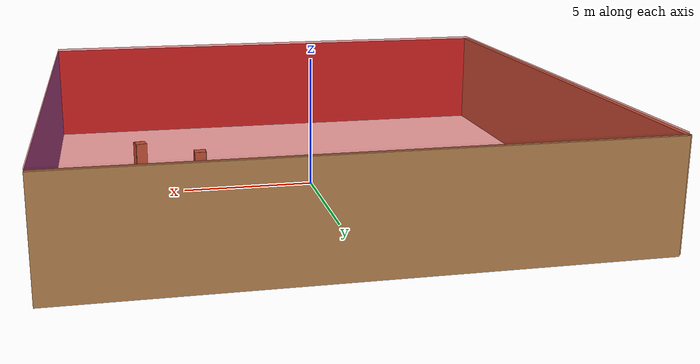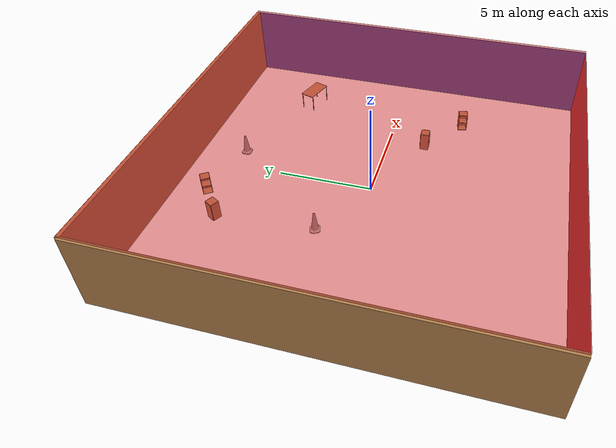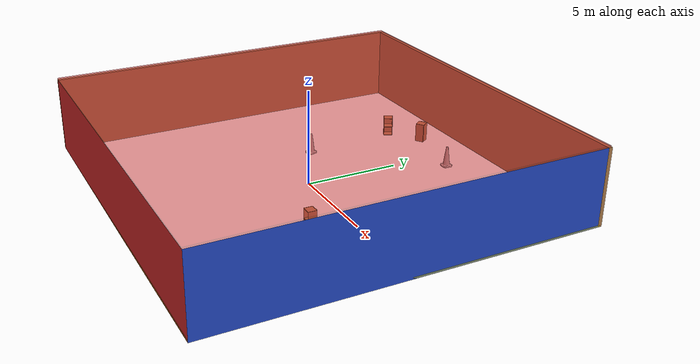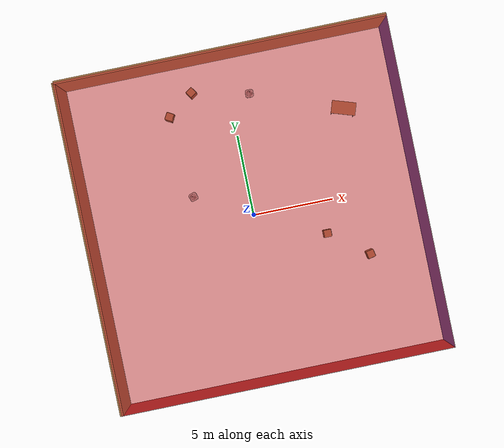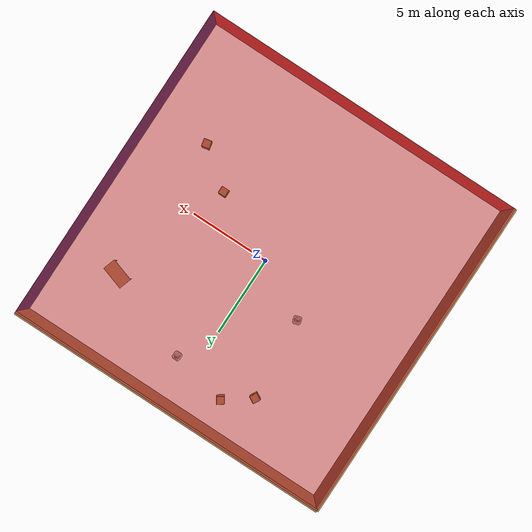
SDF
<sdf version="1.4">
 <world name="default">
  <physics type="ode">
   <max_step_size>0.001</max_step_size>
   <real_time_factor>1</real_time_factor>
   <real_time_update_rate>1000</real_time_update_rate>
   <gravity>0 0 -9.8</gravity>
  </physics>
  <scene><ambient>0.4 0.4 0.4 1</ambient><background>0.7 0.7 0.7 1</background><shadows>1</shadows></scene>
  <model name="Surrounding">
   <static>1</static>
   <link name="Ceiling">
    <collision name="Ceiling_Collision"><geometry><box><size>20 20 0.1</size></box></geometry></collision>
    <visual name="Ceiling_Visual">
     <geometry><box><size>20 20 0.1</size></box></geometry>
     <material>
      <script><uri>file://media/materials/scripts/gazebo.material</uri><name>Gazebo/RedTransparent</name></script>
     </material>
    </visual>
    <pose>0 0 4.05 0 0 0</pose>
   </link>
   <link name="Wall_South">
    <collision name="Wall_South_Collision">
     <geometry><box><size>20 0 4</size></box></geometry>
     <pose>0 0 2 0 -0 0</pose>
    </collision>
    <visual name="Wall_South_Visual">
     <pose>0 0 2 0 -0 0</pose>
     <geometry><box><size>20 0 4</size></box></geometry>
     <material>
      <script><uri>file://media/materials/scripts/gazebo.material</uri><name>Gazebo/RedBright</name></script>
     </material>
    </visual>
    <velocity_decay><linear>0</linear><angular>0</angular></velocity_decay>
    <pose>0 -10 0 0 -0 0</pose>
   </link>
   <link name="Wall_East">
    <collision name="Wall_21_Collision">
     <geometry><box><size>20 0 4</size></box></geometry>
     <pose>0 0 2 0 -0 0</pose>
    </collision>
    <visual name="Wall_21_Visual">
     <pose>0 0 2 0 -0 0</pose>
     <geometry><box><size>20 0 4</size></box></geometry>
     <material>
      <script><uri>file://media/materials/scripts/gazebo.material</uri><name>Gazebo/BlueLaser</name></script>
     </material>
    </visual>
    <velocity_decay><linear>0</linear><angular>0</angular></velocity_decay>
    <pose>10 0 0 0 -0 1.5708</pose>
   </link>
   <link name="Wall_North">
    <collision name="Wall_22_Collision">
     <geometry><box><size>20 0.2 4</size></box></geometry>
     <pose>0 0 2 0 -0 0</pose>
    </collision>
    <visual name="Wall_22_Visual">
     <pose>0 0 2 0 -0 0</pose>
     <geometry><box><size>20 0.2 4</size></box></geometry>
     <material>
      <script><uri>file://media/materials/scripts/gazebo.material</uri><name>Gazebo/WoodFloor</name></script>
     </material>
    </visual>
    <velocity_decay><linear>0</linear><angular>0</angular></velocity_decay>
    <pose>0 10 0 0 -0 0</pose>
   </link>
   <link name="Wall_West">
    <collision name="Wall_23_Collision">
     <geometry><box><size>20 0.2 4</size></box></geometry>
     <pose>0 0 2 0 -0 0</pose>
    </collision>
    <visual name="Wall_23_Visual">
     <pose>0 0 2 0 -0 0</pose>
     <geometry><box><size>20 0.2 4</size></box></geometry>
     <material>
      <script><uri>file://media/materials/scripts/gazebo.material</uri><name>Gazebo/Wood</name></script>
     </material>
    </visual>
    <velocity_decay><linear>0</linear><angular>0</angular></velocity_decay>
    <pose>-10 0 0 0 0 -1.5708</pose>
   </link>
   <link name="Ground_link">
    <collision name="collision">
     <pose>0 0 .05 0 -0 0</pose>
     <geometry><box><size>20 20 0.1</size></box></geometry>
    </collision>
    <visual name="visual">
     <pose>0 0 .05 0 -0 0</pose>
     <geometry><box><size>20 20 0.1</size></box></geometry>
     <material>
      <script>
       <uri>file://media/materials/scripts/gazebo.material</uri>
       <name>Gazebo/YellowTransparent</name>
      </script>
     </material>
    </visual>
   </link>
   <static>1</static>
  </model>
  <spherical_coordinates>
   <surface_model>EARTH_WGS84</surface_model>
   <latitude_deg>0</latitude_deg>
   <longitude_deg>0</longitude_deg>
   <elevation>0</elevation>
   <heading_deg>0</heading_deg>
  </spherical_coordinates>
  <light name="lightball_0" type="diffuse">
   <diffuse>0.8 0.8 0.8 1</diffuse>
   <specular>0.2 0.2 0.2 1</specular>
   <attenuation>
    <range>100</range>
    <constant>0.7</constant>
    <linear>0.01</linear>
    <quadratic>0.001</quadratic>
   </attenuation>
   <direction>-0.5 0.1 -0.9</direction>
   <pose>-4.77375790221 -8.62696558995 1.84966635523 0 0 0</pose>
  </light>
  <light name="lightball_1" type="diffuse">
   <diffuse>0.8 0.8 0.8 1</diffuse>
   <specular>0.2 0.2 0.2 1</specular>
   <attenuation>
    <range>100</range>
    <constant>0.7</constant>
    <linear>0.01</linear>
    <quadratic>0.001</quadratic>
   </attenuation>
   <direction>-0.5 0.1 -0.9</direction>
   <pose>0.400684169634 6.97211841291 2.75874545581 0 0 0</pose>
  </light>
  <light name="lightball_2" type="diffuse">
   <diffuse>0.8 0.8 0.8 1</diffuse>
   <specular>0.2 0.2 0.2 1</specular>
   <attenuation>
    <range>100</range>
    <constant>0.7</constant>
    <linear>0.01</linear>
    <quadratic>0.001</quadratic>
   </attenuation>
   <direction>-0.5 0.1 -0.9</direction>
   <pose>-7.94556552747 6.62298743524 0.527977233097 0 0 0</pose>
  </light>
  <light name="lightball_3" type="diffuse">
   <diffuse>0.8 0.8 0.8 1</diffuse>
   <specular>0.2 0.2 0.2 1</specular>
   <attenuation>
    <range>100</range>
    <constant>0.7</constant>
    <linear>0.01</linear>
    <quadratic>0.001</quadratic>
   </attenuation>
   <direction>-0.5 0.1 -0.9</direction>
   <pose>-2.81288529124 5.60934396051 2.86392792553 0 0 0</pose>
  </light>
  <light name="lightball_4" type="diffuse">
   <diffuse>0.8 0.8 0.8 1</diffuse>
   <specular>0.2 0.2 0.2 1</specular>
   <attenuation>
    <range>100</range>
    <constant>0.7</constant>
    <linear>0.01</linear>
    <quadratic>0.001</quadratic>
   </attenuation>
   <direction>-0.5 0.1 -0.9</direction>
   <pose>-0.70031637795 -3.54392853771 3.83354202238 0 0 0</pose>
  </light>
  <light name="lightball_5" type="diffuse">
   <diffuse>0.8 0.8 0.8 1</diffuse>
   <specular>0.2 0.2 0.2 1</specular>
   <attenuation>
    <range>100</range>
    <constant>0.7</constant>
    <linear>0.01</linear>
    <quadratic>0.001</quadratic>
   </attenuation>
   <direction>-0.5 0.1 -0.9</direction>
   <pose>-5.13829532719 -7.03123106218 0.544009790032 0 0 0</pose>
  </light>
  <light name="lightball_6" type="diffuse">
   <diffuse>0.8 0.8 0.8 1</diffuse>
   <specular>0.2 0.2 0.2 1</specular>
   <attenuation>
    <range>100</range>
    <constant>0.7</constant>
    <linear>0.01</linear>
    <quadratic>0.001</quadratic>
   </attenuation>
   <direction>-0.5 0.1 -0.9</direction>
   <pose>-2.15868133465 5.741531884 2.27771189498 0 0 0</pose>
  </light>
  <light name="lightball_7" type="diffuse">
   <diffuse>0.8 0.8 0.8 1</diffuse>
   <specular>0.2 0.2 0.2 1</specular>
   <attenuation>
    <range>100</range>
    <constant>0.7</constant>
    <linear>0.01</linear>
    <quadratic>0.001</quadratic>
   </attenuation>
   <direction>-0.5 0.1 -0.9</direction>
   <pose>6.64691781283 -8.93637189522 2.65672313537 0 0 0</pose>
  </light>
  <light name="lightball_8" type="diffuse">
   <diffuse>0.8 0.8 0.8 1</diffuse>
   <specular>0.2 0.2 0.2 1</specular>
   <attenuation>
    <range>100</range>
    <constant>0.7</constant>
    <linear>0.01</linear>
    <quadratic>0.001</quadratic>
   </attenuation>
   <direction>-0.5 0.1 -0.9</direction>
   <pose>-3.07977660639 -2.11174381001 1.90261690988 0 0 0</pose>
  </light>
  <include>
   <uri>model://construction_cone</uri>
   <pose>-3.46527989769 1.87385576419 0 0 0 1.88758598191</pose>
  </include>
  <include><uri>model://cabinet</uri><pose>-3.86742104479 6.96626315745 0 0 0 2.62655611111</pose></include>
  <include><uri>model://cabinet</uri><pose>-2.26343603411 8.15934211901 0 0 0 0.594446658628</pose></include>
  <include>
   <uri>model://construction_cone</uri>
   <pose>1.25607237646 7.48084898562 0 0 0 1.54948616054</pose>
  </include>
  <include><uri>model://cabinet</uri><pose>4.21480719925 -2.03081959221 0 0 0 1.56382857628</pose></include>
  <include><uri>model://cabinet</uri><pose>6.55857605621 -3.80214684375 0 0 0 0.207499459365</pose></include>
  <include><uri>model://table</uri><pose>6.73346128144 5.33168146938 0 0 0 2.83089543801</pose></include>
 </world>
</sdf>

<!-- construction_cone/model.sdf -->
<sdf version="1.5">
  <model name="Construction Cone">
    <link name="link">
      <collision name="collision">
        <geometry>
          <mesh>
            <scale>10 10 10</scale>
            <uri>file://isr-testbed/construction_cone/meshes/construction_cone.dae</uri>
          </mesh>
        </geometry>
      </collision>
      <visual name="visual">
        <geometry>
          <mesh>
            <scale>10 10 10</scale>
            <uri>file://isr-testbed/construction_cone/meshes/construction_cone.dae</uri>
          </mesh>
        </geometry>
      </visual>
    </link>
  </model>
</sdf>

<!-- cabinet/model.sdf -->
<sdf version="1.5">
  <model name="cabinet">
    <static>true</static>
    <link name="cabinet_bottom_plate">
      <inertial>
        <pose>0 0 -1 0 0 0</pose>
        <inertia>
          <ixx>2.050000</ixx>
          <ixy>0</ixy>
          <ixz>0</ixz>
          <iyy>2.050000</iyy>
          <iyz>0</iyz>
          <izz>2.050000</izz>
        </inertia>
        <mass>25.000000</mass>
      </inertial>
      <collision name="cabinet_bottom_plate_geom">
        <pose>0 0 0.010000 0 0 0</pose>
        <geometry>
          <box>
            <size>0.450000 0.450000 0.020000</size>
          </box>
        </geometry>
      </collision>
      <visual name="cabinet_bottom_plate_geom_visual">
        <pose>0 0 0.010000 0 0 0</pose>
        <geometry>
          <box>
            <size>0.450000 0.450000 0.020000</size>
          </box>
        </geometry>
        <material>
          <script>
            <uri>model://media/materials/scripts/gazebo.material</uri>
            <name>Gazebo/Wood</name>
          </script>
        </material>
      </visual>
      <collision name="cabinet_bottom_plate_geom_cabinet_back_plate">
        <pose>0.235000 0 0.510000 0 0 0</pose>
        <geometry>
          <box>
            <size>0.020000 0.450000 1.020000</size>
          </box>
        </geometry>
      </collision>
      <visual name="cabinet_bottom_plate_geom_cabinet_back_plate_visual">
        <pose>0.235000 0 0.510000 0 0 0</pose>
        <geometry>
          <box>
            <size>0.020000 0.450000 1.020000</size>
          </box>
        </geometry>
        <material>
          <script>
            <uri>model://media/materials/scripts/gazebo.material</uri>
            <name>Gazebo/Wood</name>
          </script>
        </material>
      </visual>
      <collision name="cabinet_bottom_plate_geom_cabinet_left_plate">
        <pose>0 0.235000 0.510000 0 0 0</pose>
        <geometry>
          <box>
            <size>0.450000 0.020000 1.020000</size>
          </box>
        </geometry>
      </collision>
      <visual name="cabinet_bottom_plate_geom_cabinet_left_plate_visual">
        <pose>0 0.235000 0.510000 0 0 0</pose>
        <geometry>
          <box>
            <size>0.450000 0.020000 1.020000</size>
          </box>
        </geometry>
        <material>
          <script>
            <uri>model://media/materials/scripts/gazebo.material</uri>
            <name>Gazebo/Wood</name>
          </script>
        </material>
      </visual>
      <collision name="cabinet_bottom_plate_geom_cabinet_middle_plate">
        <pose>0 0 0.510000 0 0 0</pose>
        <geometry>
          <box>
            <size>0.450000 0.450000 0.020000</size>
          </box>
        </geometry>
      </collision>
      <visual name="cabinet_bottom_plate_geom_cabinet_middle_plate_visual">
        <pose>0 0 0.510000 0 0 0</pose>
        <geometry>
          <box>
            <size>0.450000 0.450000 0.020000</size>
          </box>
        </geometry>
        <material>
          <script>
            <uri>model://media/materials/scripts/gazebo.material</uri>
            <name>Gazebo/Wood</name>
          </script>
        </material>
      </visual>
      <collision name="cabinet_bottom_plate_geom_cabinet_right_plate">
        <pose>0 -0.235000 0.510000 0 0 0</pose>
        <geometry>
          <box>
            <size>0.450000 0.020000 1.020000</size>
          </box>
        </geometry>
      </collision>
      <visual name="cabinet_bottom_plate_geom_cabinet_right_plate_visual">
        <pose>0 -0.235000 0.510000 0 0 0</pose>
        <geometry>
          <box>
            <size>0.450000 0.020000 1.020000</size>
          </box>
        </geometry>
        <material>
          <script>
            <uri>model://media/materials/scripts/gazebo.material</uri>
            <name>Gazebo/Wood</name>
          </script>
        </material>
      </visual>
      <collision name="cabinet_bottom_plate_geom_cabinet_top_plate">
        <pose>0 0 1.010000 0 0 0</pose>
        <geometry>
          <box>
            <size>0.450000 0.450000 0.020000</size>
          </box>
        </geometry>
      </collision>
      <visual name="cabinet_bottom_plate_geom_cabinet_top_plate_visual">
        <pose>0 0 1.010000 0 0 0</pose>
        <geometry>
          <box>
            <size>0.450000 0.450000 0.020000</size>
          </box>
        </geometry>
        <material>
          <script>
            <uri>model://media/materials/scripts/gazebo.material</uri>
            <name>Gazebo/Wood</name>
          </script>
        </material>
      </visual>
    </link>
  </model>
</sdf>

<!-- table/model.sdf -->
<sdf version="1.5">
  <model name="table">
    <static>true</static>
    <link name="link">
      <collision name="surface">
        <pose>0 0 1.0 0 0 0</pose>
        <geometry>
          <box>
            <size>1.5 0.8 0.03</size>
          </box>
        </geometry>
        <surface>
          <friction>
            <ode>
              <mu>0.6</mu>
              <mu2>0.6</mu2>
            </ode>
          </friction>
        </surface>
      </collision>
      <visual name="visual1">
        <pose>0 0 1.0 0 0 0</pose>
        <geometry>
          <box>
            <size>1.5 0.8 0.03</size>
          </box>
        </geometry>
        <material>
          <script>
            <uri>model://media/materials/scripts/gazebo.material</uri>
            <name>Gazebo/Wood</name>
          </script>
        </material>
      </visual>
      <collision name="front_left_leg">
        <pose>0.68 0.38 0.5 0 0 0</pose>
        <geometry>
          <cylinder>
            <radius>0.02</radius>
            <length>1.0</length>
          </cylinder>
        </geometry>
      </collision>
      <visual name="front_left_leg">
        <pose>0.68 0.38 0.5 0 0 0</pose>
        <geometry>
          <cylinder>
            <radius>0.02</radius>
            <length>1.0</length>
          </cylinder>
        </geometry>
        <material>
          <script>
            <uri>model://media/materials/scripts/gazebo.material</uri>
            <name>Gazebo/Grey</name>
          </script>
        </material>
      </visual>
      <collision name="front_right_leg">
        <pose>0.68 -0.38 0.5 0 0 0</pose>
        <geometry>
          <cylinder>
            <radius>0.02</radius>
            <length>1.0</length>
          </cylinder>
        </geometry>
      </collision>
      <visual name="front_right_leg">
        <pose>0.68 -0.38 0.5 0 0 0</pose>
        <geometry>
          <cylinder>
            <radius>0.02</radius>
            <length>1.0</length>
          </cylinder>
        </geometry>
        <material>
          <script>
            <uri>model://media/materials/scripts/gazebo.material</uri>
            <name>Gazebo/Grey</name>
          </script>
        </material>
      </visual>
      <collision name="back_right_leg">
        <pose>-0.68 -0.38 0.5 0 0 0</pose>
        <geometry>
          <cylinder>
            <radius>0.02</radius>
            <length>1.0</length>
          </cylinder>
        </geometry>
      </collision>
      <visual name="back_right_leg">
        <pose>-0.68 -0.38 0.5 0 0 0</pose>
        <geometry>
          <cylinder>
            <radius>0.02</radius>
            <length>1.0</length>
          </cylinder>
        </geometry>
        <material>
          <script>
            <uri>model://media/materials/scripts/gazebo.material</uri>
            <name>Gazebo/Grey</name>
          </script>
        </material>
      </visual>
      <collision name="back_left_leg">
        <pose>-0.68 0.38 0.5 0 0 0</pose>
        <geometry>
          <cylinder>
            <radius>0.02</radius>
            <length>1.0</length>
          </cylinder>
        </geometry>
      </collision>
      <visual name="back_left_leg">
        <pose>-0.68 0.38 0.5 0 0 0</pose>
        <geometry>
          <cylinder>
            <radius>0.02</radius>
            <length>1.0</length>
          </cylinder>
        </geometry>
        <material>
          <script>
            <uri>model://media/materials/scripts/gazebo.material</uri>
            <name>Gazebo/Grey</name>
          </script>
        </material>
      </visual>
    </link>
  </model>
</sdf>
